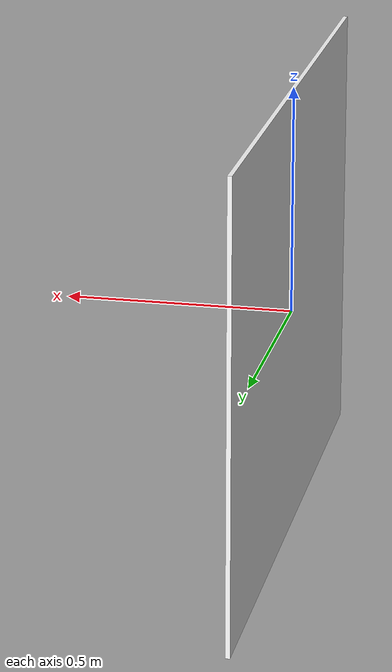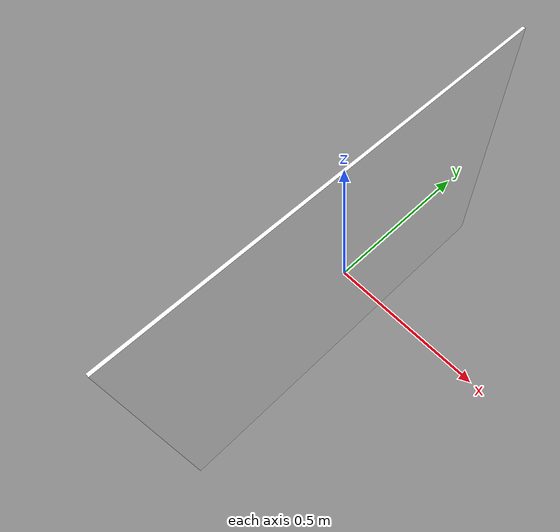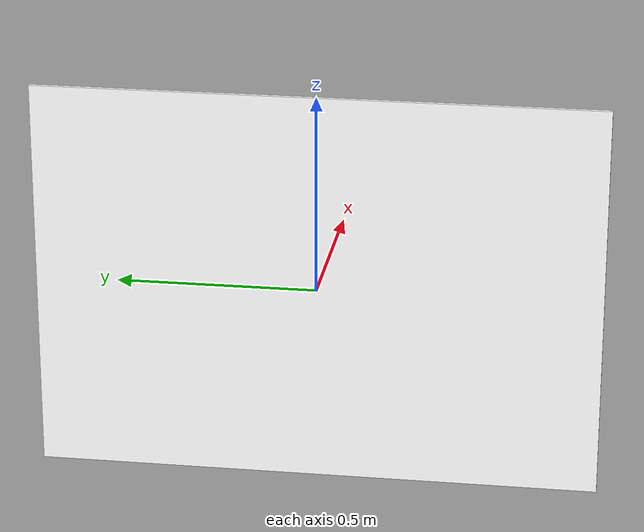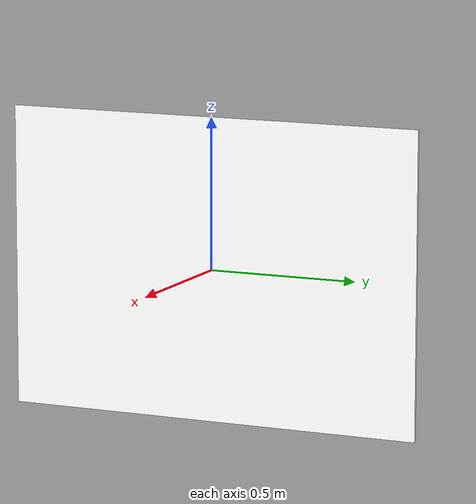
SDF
<?xml version='1.0'?>
<sdf version='1.7'>
  <model name='10x7_my_checkerboard'>
    <link name='link'>
      <inertial>
        <mass>1</mass>
        <inertia>
          <ixx>0.166667</ixx>
          <ixy>0</ixy>
          <ixz>0</ixz>
          <iyy>0.166667</iyy>
          <iyz>0</iyz>
          <izz>0.166667</izz>
        </inertia>
        <pose>0 0 0 0 -0 0</pose>
      </inertial>
      <self_collide>0</self_collide>
      <enable_wind>0</enable_wind>
      <kinematic>0</kinematic>
      <pose>0 0 0 0 -0 0</pose>
      <gravity>1</gravity>
      <visual name='visual'>
        <geometry>
          <box>
            <size>0.01 1.4144 1</size>
          </box>
        </geometry>
        <material>
          <script>
            <name>Checkerboard/10x7</name>
            <uri>materials/scripts/checkerboard.material</uri>
          </script>
          <shader type='pixel'>
            <normal_map>__default__</normal_map>
          </shader>
          <ambient>1 1 1 1</ambient>
          <diffuse>1 1 1 1</diffuse>
          <specular>1 1 1 1</specular>
          <emissive>1 1 1 1</emissive>
        </material>
        <pose>0 0 0 0 -0 0</pose>
        <transparency>0</transparency>
        <cast_shadows>1</cast_shadows>
      </visual>
    </link>
    <static>1</static>
    <allow_auto_disable>1</allow_auto_disable>
  </model>
</sdf>
